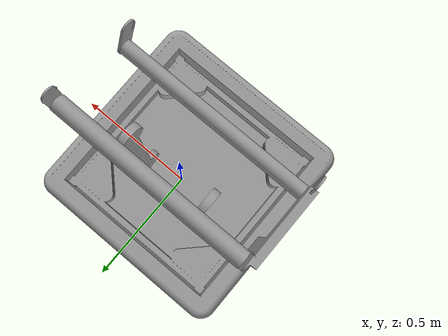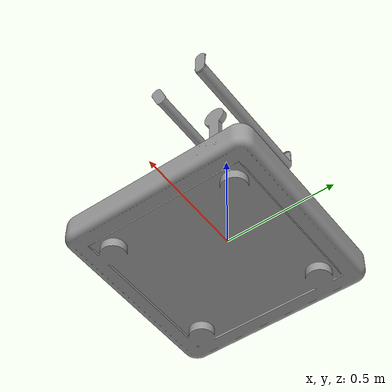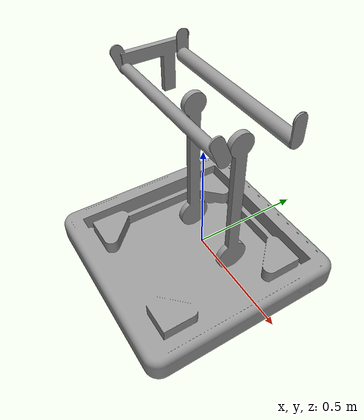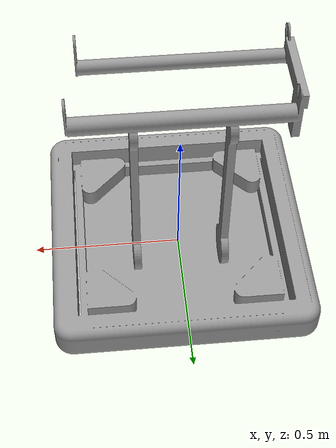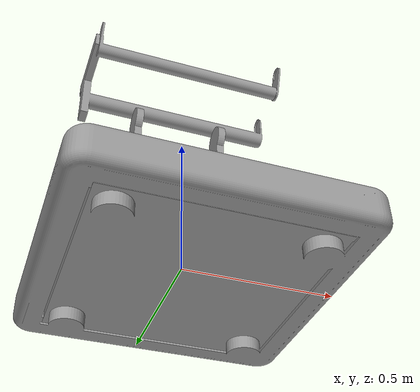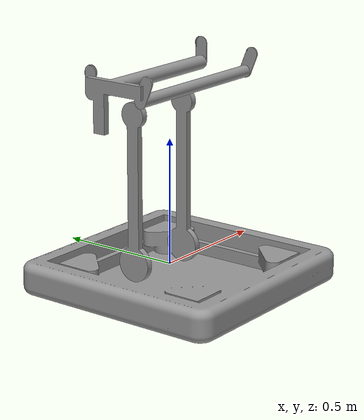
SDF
<?xml version='1.0'?>
<sdf version='1.7'>
  <model name='Ri3D'>
    <link name='chassis'>
      <inertial>
        <mass>10</mass>
        <inertia>
          <ixx>0.99014552</ixx>
          <ixy>0</ixy>
          <ixz>0</ixz>
          <iyy>0.99014552</iyy>
          <iyz>0</iyz>
          <izz>1.95170131</izz>
        </inertia>
        <pose>0 0 0 0 -0 0</pose>
      </inertial>
      <pose>0 -0.05 -0.025 0 -0 0</pose>
      <gravity>1</gravity>
      <self_collide>0</self_collide>
      <kinematic>0</kinematic>
      <enable_wind>0</enable_wind>
      <visual name='visual'>
        <pose>0 0 0 0 -0 0</pose>
        <geometry>
          <mesh>
            <uri>/home/ajahueym/Documents/Gits/Overture-ROS/src/robot_simulation/models/ri3d/chassis.dae</uri>
            <scale>1 1 1</scale>
          </mesh>
        </geometry>
        <material>
          <lighting>1</lighting>
          <script>
            <uri>file://media/materials/scripts/gazebo.material</uri>
            <name>Gazebo/Grey</name>
          </script>
          <shader type='pixel'>
            <normal_map>__default__</normal_map>
          </shader>
          <ambient>0.3 0.3 0.3 1</ambient>
          <diffuse>0.7 0.7 0.7 1</diffuse>
          <specular>0.01 0.01 0.01 1</specular>
          <emissive>0 0 0 1</emissive>
        </material>
        <transparency>0</transparency>
        <cast_shadows>1</cast_shadows>
      </visual>
      <collision name='collision'>
        <laser_retro>0</laser_retro>
        <max_contacts>10</max_contacts>
        <pose>0 0 0 0 -0 0</pose>
        <geometry>
          <mesh>
            <uri>/home/ajahueym/Documents/Gits/Overture-ROS/src/robot_simulation/models/ri3d/chassis.dae</uri>
            <scale>1 1 1</scale>
          </mesh>
        </geometry>
        <surface>
          <friction>
            <ode>
              <mu>1</mu>
              <mu2>1</mu2>
              <fdir1>0 0 0</fdir1>
              <slip1>0</slip1>
              <slip2>0</slip2>
            </ode>
            <torsional>
              <coefficient>1</coefficient>
              <patch_radius>0</patch_radius>
              <surface_radius>0</surface_radius>
              <use_patch_radius>1</use_patch_radius>
              <ode>
                <slip>0</slip>
              </ode>
            </torsional>
          </friction>
          <bounce>
            <restitution_coefficient>0</restitution_coefficient>
            <threshold>1e+06</threshold>
          </bounce>
          <contact>
            <collide_without_contact>0</collide_without_contact>
            <collide_without_contact_bitmask>1</collide_without_contact_bitmask>
            <collide_bitmask>1</collide_bitmask>
            <ode>
              <soft_cfm>0</soft_cfm>
              <soft_erp>0.2</soft_erp>
              <kp>1e+13</kp>
              <kd>1</kd>
              <max_vel>0.01</max_vel>
              <min_depth>0</min_depth>
            </ode>
            <bullet>
              <split_impulse>1</split_impulse>
              <split_impulse_penetration_threshold>-0.01</split_impulse_penetration_threshold>
              <soft_cfm>0</soft_cfm>
              <soft_erp>0.2</soft_erp>
              <kp>1e+13</kp>
              <kd>1</kd>
            </bullet>
          </contact>
        </surface>
      </collision>
    </link>
    <link name='arm'>
      <inertial>
        <mass>1.5</mass>
        <inertia>
          <ixx>0.07609736</ixx>
          <ixy>0</ixy>
          <ixz>0</ixz>
          <iyy>0.10455558</iyy>
          <iyz>0</iyz>
          <izz>0.03025134</izz>
        </inertia>
        <pose>0 0 0 0 -0 0</pose>
      </inertial>
      <pose>-0 0.05 0.025 0 -0 0</pose>
      <gravity>1</gravity>
      <self_collide>0</self_collide>
      <kinematic>0</kinematic>
      <enable_wind>0</enable_wind>
      <visual name='visual'>
        <pose>0 0 0 0 -0 0</pose>
        <geometry>
          <mesh>
            <uri>/home/ajahueym/Documents/Gits/Overture-ROS/src/robot_simulation/models/ri3d/arm.dae</uri>
            <scale>1 1 1</scale>
          </mesh>
        </geometry>
        <material>
          <lighting>1</lighting>
          <script>
            <uri>file://media/materials/scripts/gazebo.material</uri>
            <name>Gazebo/Grey</name>
          </script>
          <shader type='pixel'>
            <normal_map>__default__</normal_map>
          </shader>
          <ambient>0.3 0.3 0.3 1</ambient>
          <diffuse>0.7 0.7 0.7 1</diffuse>
          <specular>0.01 0.01 0.01 1</specular>
          <emissive>0 0 0 1</emissive>
        </material>
        <transparency>0</transparency>
        <cast_shadows>1</cast_shadows>
      </visual>
      <collision name='collision'>
        <laser_retro>0</laser_retro>
        <max_contacts>10</max_contacts>
        <pose>0 0 0 0 -0 0</pose>
        <geometry>
          <mesh>
            <uri>/home/ajahueym/Documents/Gits/Overture-ROS/src/robot_simulation/models/ri3d/arm.dae</uri>
            <scale>1 1 1</scale>
          </mesh>
        </geometry>
        <surface>
          <friction>
            <ode>
              <mu>1</mu>
              <mu2>1</mu2>
              <fdir1>0 0 0</fdir1>
              <slip1>0</slip1>
              <slip2>0</slip2>
            </ode>
            <torsional>
              <coefficient>1</coefficient>
              <patch_radius>0</patch_radius>
              <surface_radius>0</surface_radius>
              <use_patch_radius>1</use_patch_radius>
              <ode>
                <slip>0</slip>
              </ode>
            </torsional>
          </friction>
          <bounce>
            <restitution_coefficient>0</restitution_coefficient>
            <threshold>1e+06</threshold>
          </bounce>
          <contact>
            <collide_without_contact>0</collide_without_contact>
            <collide_without_contact_bitmask>1</collide_without_contact_bitmask>
            <collide_bitmask>1</collide_bitmask>
            <ode>
              <soft_cfm>0</soft_cfm>
              <soft_erp>0.2</soft_erp>
              <kp>1e+13</kp>
              <kd>1</kd>
              <max_vel>0.01</max_vel>
              <min_depth>0</min_depth>
            </ode>
            <bullet>
              <split_impulse>1</split_impulse>
              <split_impulse_penetration_threshold>-0.01</split_impulse_penetration_threshold>
              <soft_cfm>0</soft_cfm>
              <soft_erp>0.2</soft_erp>
              <kp>1e+13</kp>
              <kd>1</kd>
            </bullet>
          </contact>
        </surface>
      </collision>
    </link>
    <link name='intake_shooter'>
      <inertial>
        <mass>2</mass>
        <inertia>
          <ixx>0.03297631</ixx>
          <ixy>0</ixy>
          <ixz>0</ixz>
          <iyy>0.11546233</iyy>
          <iyz>0</iyz>
          <izz>0.09072956</izz>
        </inertia>
        <pose>0 0 0 0 -0 0</pose>
      </inertial>
      <pose>-0.34 0.05 0.66 0 -0 0</pose>
      <gravity>1</gravity>
      <self_collide>0</self_collide>
      <kinematic>0</kinematic>
      <enable_wind>0</enable_wind>
      <visual name='visual'>
        <pose>0 0 0 0 -0 0</pose>
        <geometry>
          <mesh>
            <uri>/home/ajahueym/Documents/Gits/Overture-ROS/src/robot_simulation/models/ri3d/shooterIntakeAssembly.dae</uri>
            <scale>1 1 1</scale>
          </mesh>
        </geometry>
        <material>
          <lighting>1</lighting>
          <script>
            <uri>file://media/materials/scripts/gazebo.material</uri>
            <name>Gazebo/Grey</name>
          </script>
          <shader type='pixel'>
            <normal_map>__default__</normal_map>
          </shader>
          <ambient>0.3 0.3 0.3 1</ambient>
          <diffuse>0.7 0.7 0.7 1</diffuse>
          <specular>0.01 0.01 0.01 1</specular>
          <emissive>0 0 0 1</emissive>
        </material>
        <transparency>0</transparency>
        <cast_shadows>1</cast_shadows>
      </visual>
      <collision name='collision'>
        <laser_retro>0</laser_retro>
        <max_contacts>10</max_contacts>
        <pose>0 0 0 0 -0 0</pose>
        <geometry>
          <mesh>
            <uri>/home/ajahueym/Documents/Gits/Overture-ROS/src/robot_simulation/models/ri3d/shooterIntakeAssembly.dae</uri>
            <scale>1 1 1</scale>
          </mesh>
        </geometry>
        <surface>
          <friction>
            <ode>
              <mu>1</mu>
              <mu2>1</mu2>
              <fdir1>0 0 0</fdir1>
              <slip1>0</slip1>
              <slip2>0</slip2>
            </ode>
            <torsional>
              <coefficient>1</coefficient>
              <patch_radius>0</patch_radius>
              <surface_radius>0</surface_radius>
              <use_patch_radius>1</use_patch_radius>
              <ode>
                <slip>0</slip>
              </ode>
            </torsional>
          </friction>
          <bounce>
            <restitution_coefficient>0</restitution_coefficient>
            <threshold>1e+06</threshold>
          </bounce>
          <contact>
            <collide_without_contact>0</collide_without_contact>
            <collide_without_contact_bitmask>1</collide_without_contact_bitmask>
            <collide_bitmask>1</collide_bitmask>
            <ode>
              <soft_cfm>0</soft_cfm>
              <soft_erp>0.2</soft_erp>
              <kp>1e+13</kp>
              <kd>1</kd>
              <max_vel>0.01</max_vel>
              <min_depth>0</min_depth>
            </ode>
            <bullet>
              <split_impulse>1</split_impulse>
              <split_impulse_penetration_threshold>-0.01</split_impulse_penetration_threshold>
              <soft_cfm>0</soft_cfm>
              <soft_erp>0.2</soft_erp>
              <kp>1e+13</kp>
              <kd>1</kd>
            </bullet>
          </contact>
        </surface>
      </collision>
    </link>
    <joint name='arm_joint' type='revolute'>
      <parent>chassis</parent>
      <child>arm</child>
      <pose>0 0 0 0 -0 0</pose>
      <axis>
        <xyz>1 0 0</xyz>
        <limit>
          <lower>-0.5</lower>
          <upper>1.57</upper>
          <effort>-1</effort>
          <velocity>-1</velocity>
        </limit>
        <dynamics>
          <spring_reference>0</spring_reference>
          <spring_stiffness>0</spring_stiffness>
          <damping>0</damping>
          <friction>1.5</friction>
        </dynamics>
      </axis>
      <physics>
        <ode>
          <limit>
            <cfm>0</cfm>
            <erp>0.2</erp>
          </limit>
          <suspension>
            <cfm>0</cfm>
            <erp>0.2</erp>
          </suspension>
        </ode>
      </physics>
    </joint>
    <joint name='intake_shooter_joint' type='revolute'>
      <parent>arm</parent>
      <child>intake_shooter</child>
      <pose>0 0 -0.045 0 -0 0</pose>
      <axis>
        <xyz>1 0 0</xyz>
        <limit>
          <lower>-3.141516</lower>
          <upper>3.141516</upper>
          <effort>-1</effort>
          <velocity>-1</velocity>
        </limit>
        <dynamics>
          <spring_reference>0</spring_reference>
          <spring_stiffness>0</spring_stiffness>
          <damping>0</damping>
          <friction>1.5</friction>
        </dynamics>
      </axis>
      <physics>
        <ode>
          <limit>
            <cfm>0</cfm>
            <erp>0.2</erp>
          </limit>
          <suspension>
            <cfm>0</cfm>
            <erp>0.2</erp>
          </suspension>
        </ode>
      </physics>
    </joint>
    <static>0</static>
    <allow_auto_disable>1</allow_auto_disable>
    <plugin name='NTMotor_Arm' filename='libnt_motor_plugin.so'>
        <joint_name>arm_joint</joint_name>
        <joint_axis>0</joint_axis>
        <torque_axis>x</torque_axis>
        <motor_model>FalconFOC</motor_model>
        <motor_count>2</motor_count>
        <gear_ratio>150</gear_ratio>
    </plugin>

    <plugin name='NTMotor_ShooterIntake' filename='libnt_motor_plugin.so'>
        <joint_name>intake_shooter_joint</joint_name>
        <joint_axis>0</joint_axis>
        <torque_axis>x</torque_axis>
        <motor_model>FalconFOC</motor_model>
        <motor_count>1</motor_count>
        <gear_ratio>80</gear_ratio>
    </plugin>

  </model>
</sdf>
